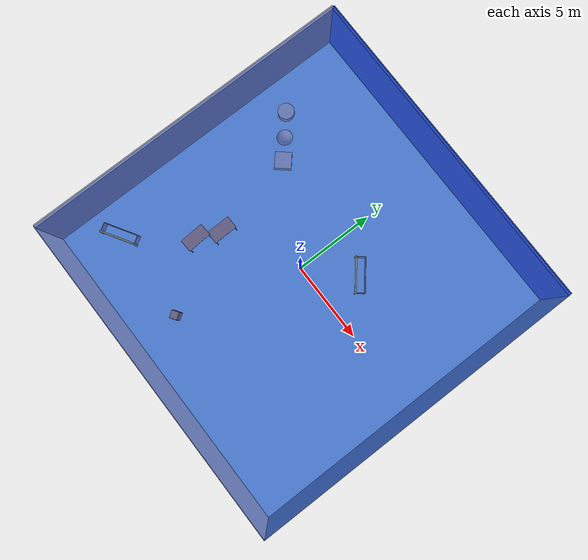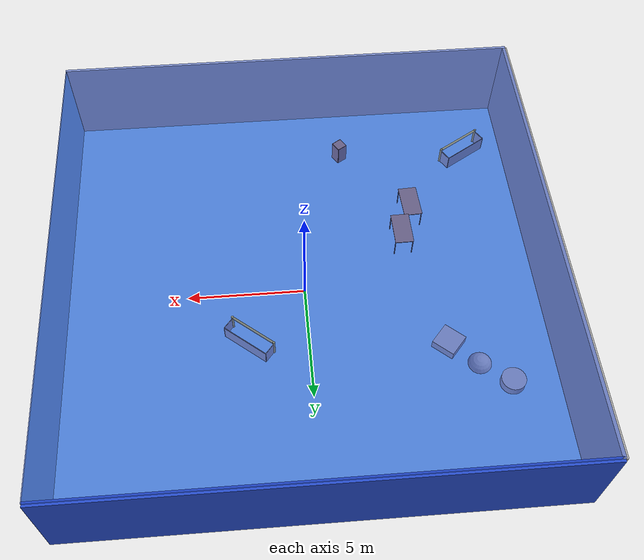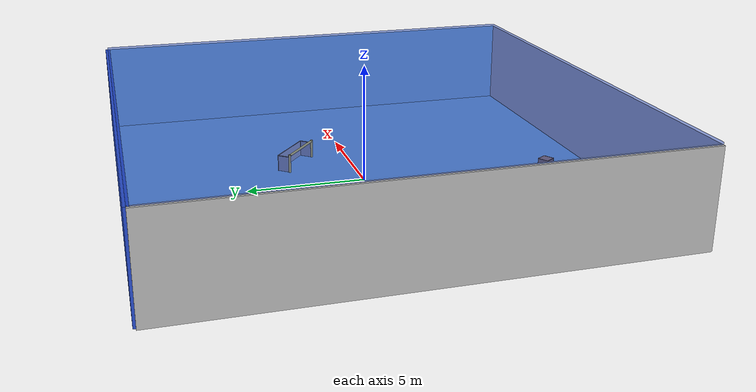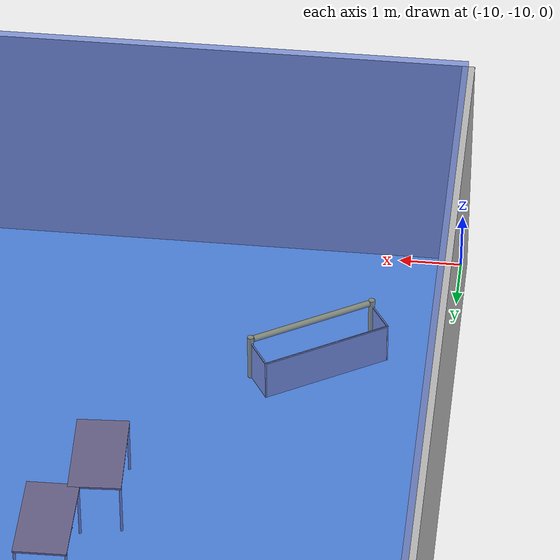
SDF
<sdf version="1.4">
 <world name="default">
  <physics type="ode">
   <max_step_size>0.001</max_step_size>
   <real_time_factor>1</real_time_factor>
   <real_time_update_rate>1000</real_time_update_rate>
   <gravity>0 0 -9.8</gravity>
  </physics>
  <scene><ambient>0.4 0.4 0.4 1</ambient><background>0.7 0.7 0.7 1</background><shadows>1</shadows></scene>
  <model name="Surrounding">
   <static>1</static>
   <link name="Ceiling">
    <collision name="Ceiling_Collision"><geometry><box><size>20 20 0.1</size></box></geometry></collision>
    <visual name="Ceiling_Visual">
     <geometry><box><size>20 20 0.1</size></box></geometry>
     <material>
      <script><uri>file://media/materials/scripts/gazebo.material</uri><name>Gazebo/BlueTransparent</name></script>
     </material>
    </visual>
    <pose>0 0 4.05 0 0 0</pose>
   </link>
   <link name="Wall_South">
    <collision name="Wall_South_Collision">
     <geometry><box><size>20 0 4</size></box></geometry>
     <pose>0 0 2 0 -0 0</pose>
    </collision>
    <visual name="Wall_South_Visual">
     <pose>0 0 2 0 -0 0</pose>
     <geometry><box><size>20 0 4</size></box></geometry>
     <material>
      <script><uri>file://media/materials/scripts/gazebo.material</uri><name>Gazebo/CeilingTiled</name></script>
     </material>
    </visual>
    <velocity_decay><linear>0</linear><angular>0</angular></velocity_decay>
    <pose>0 -10 0 0 -0 0</pose>
   </link>
   <link name="Wall_East">
    <collision name="Wall_21_Collision">
     <geometry><box><size>20 0 4</size></box></geometry>
     <pose>0 0 2 0 -0 0</pose>
    </collision>
    <visual name="Wall_21_Visual">
     <pose>0 0 2 0 -0 0</pose>
     <geometry><box><size>20 0 4</size></box></geometry>
     <material>
      <script><uri>file://media/materials/scripts/gazebo.material</uri><name>Gazebo/SkyBlue</name></script>
     </material>
    </visual>
    <velocity_decay><linear>0</linear><angular>0</angular></velocity_decay>
    <pose>10 0 0 0 -0 1.5708</pose>
   </link>
   <link name="Wall_North">
    <collision name="Wall_22_Collision">
     <geometry><box><size>20 0.2 4</size></box></geometry>
     <pose>0 0 2 0 -0 0</pose>
    </collision>
    <visual name="Wall_22_Visual">
     <pose>0 0 2 0 -0 0</pose>
     <geometry><box><size>20 0.2 4</size></box></geometry>
     <material>
      <script><uri>file://media/materials/scripts/gazebo.material</uri><name>Gazebo/BlueGlow</name></script>
     </material>
    </visual>
    <velocity_decay><linear>0</linear><angular>0</angular></velocity_decay>
    <pose>0 10 0 0 -0 0</pose>
   </link>
   <link name="Wall_West">
    <collision name="Wall_23_Collision">
     <geometry><box><size>20 0.2 4</size></box></geometry>
     <pose>0 0 2 0 -0 0</pose>
    </collision>
    <visual name="Wall_23_Visual">
     <pose>0 0 2 0 -0 0</pose>
     <geometry><box><size>20 0.2 4</size></box></geometry>
     <material>
      <script><uri>file://media/materials/scripts/gazebo.material</uri><name>Gazebo/LightOff</name></script>
     </material>
    </visual>
    <velocity_decay><linear>0</linear><angular>0</angular></velocity_decay>
    <pose>-10 0 0 0 0 -1.5708</pose>
   </link>
   <link name="Ground_link">
    <collision name="collision">
     <pose>0 0 .05 0 -0 0</pose>
     <geometry><box><size>20 20 0.1</size></box></geometry>
    </collision>
    <visual name="visual">
     <pose>0 0 .05 0 -0 0</pose>
     <geometry><box><size>20 20 0.1</size></box></geometry>
     <material>
      <script><uri>file://media/materials/scripts/gazebo.material</uri><name>Gazebo/SkyBlue</name></script>
     </material>
    </visual>
   </link>
   <static>1</static>
  </model>
  <spherical_coordinates>
   <surface_model>EARTH_WGS84</surface_model>
   <latitude_deg>0</latitude_deg>
   <longitude_deg>0</longitude_deg>
   <elevation>0</elevation>
   <heading_deg>0</heading_deg>
  </spherical_coordinates>
  <light name="lightball_0" type="diffuse">
   <diffuse>0.8 0.8 0.8 1</diffuse>
   <specular>0.2 0.2 0.2 1</specular>
   <attenuation>
    <range>100</range>
    <constant>0.7</constant>
    <linear>0.01</linear>
    <quadratic>0.001</quadratic>
   </attenuation>
   <direction>-0.5 0.1 -0.9</direction>
   <pose>-5.89853536084 1.57136642123 1.50411400072 0 0 0</pose>
  </light>
  <light name="lightball_1" type="diffuse">
   <diffuse>0.8 0.8 0.8 1</diffuse>
   <specular>0.2 0.2 0.2 1</specular>
   <attenuation>
    <range>100</range>
    <constant>0.7</constant>
    <linear>0.01</linear>
    <quadratic>0.001</quadratic>
   </attenuation>
   <direction>-0.5 0.1 -0.9</direction>
   <pose>4.66119897508 -6.52795968992 0.801674971342 0 0 0</pose>
  </light>
  <light name="lightball_2" type="diffuse">
   <diffuse>0.8 0.8 0.8 1</diffuse>
   <specular>0.2 0.2 0.2 1</specular>
   <attenuation>
    <range>100</range>
    <constant>0.7</constant>
    <linear>0.01</linear>
    <quadratic>0.001</quadratic>
   </attenuation>
   <direction>-0.5 0.1 -0.9</direction>
   <pose>-1.70756710552 -0.0141955603633 1.3141226564 0 0 0</pose>
  </light>
  <light name="lightball_3" type="diffuse">
   <diffuse>0.8 0.8 0.8 1</diffuse>
   <specular>0.2 0.2 0.2 1</specular>
   <attenuation>
    <range>100</range>
    <constant>0.7</constant>
    <linear>0.01</linear>
    <quadratic>0.001</quadratic>
   </attenuation>
   <direction>-0.5 0.1 -0.9</direction>
   <pose>8.29766404248 -6.28534963235 1.33023330233 0 0 0</pose>
  </light>
  <light name="lightball_4" type="diffuse">
   <diffuse>0.8 0.8 0.8 1</diffuse>
   <specular>0.2 0.2 0.2 1</specular>
   <attenuation>
    <range>100</range>
    <constant>0.7</constant>
    <linear>0.01</linear>
    <quadratic>0.001</quadratic>
   </attenuation>
   <direction>-0.5 0.1 -0.9</direction>
   <pose>6.204774944 4.156924615 2.48586316904 0 0 0</pose>
  </light>
  <light name="lightball_5" type="diffuse">
   <diffuse>0.8 0.8 0.8 1</diffuse>
   <specular>0.2 0.2 0.2 1</specular>
   <attenuation>
    <range>100</range>
    <constant>0.7</constant>
    <linear>0.01</linear>
    <quadratic>0.001</quadratic>
   </attenuation>
   <direction>-0.5 0.1 -0.9</direction>
   <pose>-0.385526046135 1.00841517697 3.4909361524 0 0 0</pose>
  </light>
  <light name="lightball_6" type="diffuse">
   <diffuse>0.8 0.8 0.8 1</diffuse>
   <specular>0.2 0.2 0.2 1</specular>
   <attenuation>
    <range>100</range>
    <constant>0.7</constant>
    <linear>0.01</linear>
    <quadratic>0.001</quadratic>
   </attenuation>
   <direction>-0.5 0.1 -0.9</direction>
   <pose>-2.055765247 8.00623807468 1.11357734511 0 0 0</pose>
  </light>
  <light name="lightball_7" type="diffuse">
   <diffuse>0.8 0.8 0.8 1</diffuse>
   <specular>0.2 0.2 0.2 1</specular>
   <attenuation>
    <range>100</range>
    <constant>0.7</constant>
    <linear>0.01</linear>
    <quadratic>0.001</quadratic>
   </attenuation>
   <direction>-0.5 0.1 -0.9</direction>
   <pose>-3.95924504517 -6.18843956791 3.09055379605 0 0 0</pose>
  </light>
  <light name="lightball_8" type="diffuse">
   <diffuse>0.8 0.8 0.8 1</diffuse>
   <specular>0.2 0.2 0.2 1</specular>
   <attenuation>
    <range>100</range>
    <constant>0.7</constant>
    <linear>0.01</linear>
    <quadratic>0.001</quadratic>
   </attenuation>
   <direction>-0.5 0.1 -0.9</direction>
   <pose>-6.90273923039 4.31878472571 2.56851369142 0 0 0</pose>
  </light>
  <light name="lightball_9" type="diffuse">
   <diffuse>0.8 0.8 0.8 1</diffuse>
   <specular>0.2 0.2 0.2 1</specular>
   <attenuation>
    <range>100</range>
    <constant>0.7</constant>
    <linear>0.01</linear>
    <quadratic>0.001</quadratic>
   </attenuation>
   <direction>-0.5 0.1 -0.9</direction>
   <pose>5.024124933 -1.42105555042 2.70278552002 0 0 0</pose>
  </light>
  <include>
   <uri>model://robocup_3Dsim_goal</uri>
   <pose>-7.83241515323 -7.32951402401 0 0 0 2.11985770847</pose>
  </include>
  <include>
   <uri>model://textured_shapes</uri>
   <pose>-6.81937663562 4.08070020045 0 0 0 0.856749956138</pose>
  </include>
  <include><uri>model://table</uri><pose>-5.01106416829 -3.74636765418 0 0 0 1.62590173871</pose></include>
  <include><uri>model://table</uri><pose>-4.4499464876 -2.28197236764 0 0 0 1.58904006547</pose></include>
  <include><uri>model://cabinet</uri><pose>-2.19807691616 -7.33590887588 0 0 0 0.573195088123</pose></include>
  <include>
   <uri>model://robocup_3Dsim_goal</uri>
   <pose>2.28472183821 2.2483553764 0 0 0 0.886212486464</pose>
  </include>
 </world>
</sdf>

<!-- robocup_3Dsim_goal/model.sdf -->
<sdf version="1.5">
  <model name="robocup_3d_goal">
    <static>true</static>
    <link name="left_post">
      <pose>0 1.05 0.45 0 0 0</pose>
      <collision name="collision">
        <geometry>
          <cylinder>
            <radius>0.05</radius>
            <length>0.9</length>
          </cylinder>
        </geometry>
      </collision>
      <visual name="visual">
        <geometry>
          <cylinder>
            <radius>0.05</radius>
            <length>0.9</length>
          </cylinder>
        </geometry>
        <material>
          <script>
            <uri>file://media/materials/scripts/gazebo.material</uri>
            <name>Gazebo/ZincYellow</name>
          </script>
        </material>
      </visual>
    </link>
    <link name="left_support_horiz_lower">
      <pose>0.30 1.05 0.01 0 0 0</pose>
      <collision name="collision">
        <geometry>
          <box>
            <size>0.50 0.02 0.02</size>
          </box>
        </geometry>
      </collision>
      <visual name="visual">
        <geometry>
          <box>
            <size>0.50 0.02 0.02</size>
          </box>
        </geometry>
        <material>
          <script>
            <uri>file://media/materials/scripts/gazebo.material</uri>
            <name>Gazebo/White</name>
          </script>
        </material>
      </visual>
    </link>
    <link name="left_support_horiz_upper">
      <pose>0.30 1.05 0.79 0 0 0</pose>
      <collision name="collision">
        <geometry>
          <box>
            <size>0.50 0.02 0.02</size>
          </box>
        </geometry>
      </collision>
      <visual name="visual">
        <geometry>
          <box>
            <size>0.50 0.02 0.02</size>
          </box>
        </geometry>
        <material>
          <script>
            <uri>file://media/materials/scripts/gazebo.material</uri>
            <name>Gazebo/White</name>
          </script>
        </material>
      </visual>
    </link>
    <link name="left_support_vertical">
      <pose>0.56 1.05 0.4 0 1.5708 0</pose>
      <collision name="collision">
        <geometry>
          <box>
            <size>0.80 0.02 0.02</size>
          </box>
        </geometry>
      </collision>
      <visual name="visual">
        <geometry>
          <box>
            <size>0.80 0.02 0.02</size>
          </box>
        </geometry>
        <material>
          <script>
            <uri>file://media/materials/scripts/gazebo.material</uri>
            <name>Gazebo/White</name>
          </script>
        </material>
      </visual>
    </link>
    <link name="right_support_horiz_lower">
      <pose>0.30 -1.05 0.01 0 0 0</pose>
      <collision name="collision">
        <geometry>
          <box>
            <size>0.50 0.02 0.02</size>
          </box>
        </geometry>
      </collision>
      <visual name="visual">
        <geometry>
          <box>
            <size>0.50 0.02 0.02</size>
          </box>
        </geometry>
        <material>
          <script>
            <uri>file://media/materials/scripts/gazebo.material</uri>
            <name>Gazebo/White</name>
          </script>
        </material>
      </visual>
    </link>
    <link name="right_support_horiz_upper">
      <pose>0.30 -1.05 0.79 0 0 0</pose>
      <collision name="collision">
        <geometry>
          <box>
            <size>0.50 0.02 0.02</size>
          </box>
        </geometry>
      </collision>
      <visual name="visual">
        <geometry>
          <box>
            <size>0.50 0.02 0.02</size>
          </box>
        </geometry>
        <material>
          <script>
            <uri>file://media/materials/scripts/gazebo.material</uri>
            <name>Gazebo/White</name>
          </script>
        </material>
      </visual>
    </link>
    <link name="right_support_vertical">
      <pose>0.56 -1.05 0.4 0 1.5708 0</pose>
      <collision name="collision">
        <geometry>
          <box>
            <size>0.80 0.02 0.02</size>
          </box>
        </geometry>
      </collision>
      <visual name="visual">
        <geometry>
          <box>
            <size>0.80 0.02 0.02</size>
          </box>
        </geometry>
        <material>
          <script>
            <uri>file://media/materials/scripts/gazebo.material</uri>
            <name>Gazebo/White</name>
          </script>
        </material>
      </visual>
    </link>
    <link name="center_support_horiz_lower">
      <pose>0.56 0 0.01 0 1.5708 0</pose>
      <collision name="collision">
        <geometry>
          <box>
            <size>0.02 2.08 0.02</size>
          </box>
        </geometry>
      </collision>
      <visual name="visual">
        <geometry>
          <box>
            <size>0.02 2.08 0.02</size>
          </box>
        </geometry>
        <material>
          <script>
            <uri>file://media/materials/scripts/gazebo.material</uri>
            <name>Gazebo/White</name>
          </script>
        </material>
      </visual>
    </link>
    <link name="center_support_horiz_upper">
      <pose>0.56 0 0.79 0 1.5708 0</pose>
      <collision name="collision">
        <geometry>
          <box>
            <size>0.02 2.08 0.02</size>
          </box>
        </geometry>
      </collision>
      <visual name="visual">
        <geometry>
          <box>
            <size>0.02 2.08 0.02</size>
          </box>
        </geometry>
        <material>
          <script>
            <uri>file://media/materials/scripts/gazebo.material</uri>
            <name>Gazebo/White</name>
          </script>
        </material>
      </visual>
    </link>
    <link name="right_post">
      <pose>0 -1.05 0.45 0 0 0</pose>
      <collision name="collision">
        <geometry>
          <cylinder>
            <radius>0.05</radius>
            <length>0.9</length>
          </cylinder>
        </geometry>
      </collision>
      <visual name="visual">
        <geometry>
          <cylinder>
            <radius>0.05</radius>
            <length>0.9</length>
          </cylinder>
        </geometry>
        <material>
          <script>
            <uri>file://media/materials/scripts/gazebo.material</uri>
            <name>Gazebo/ZincYellow</name>
          </script>
        </material>
      </visual>
    </link>
    <link name="crossbar">
      <pose>0 0 0.85 1.57 1.57 0</pose>
      <collision name="collision">
        <geometry>
          <cylinder>
            <radius>0.05</radius>
            <length>2.0</length>
          </cylinder>
        </geometry>
      </collision>
      <visual name="visual">
        <geometry>
          <cylinder>
            <radius>0.05</radius>
            <length>2.0</length>
          </cylinder>
        </geometry>
        <material>
          <script>
            <uri>file://media/materials/scripts/gazebo.material</uri>
            <name>Gazebo/ZincYellow</name>
          </script>
        </material>
      </visual>
    </link>
    <link name="center_net">
      <pose>0.56 0 0.40 0 0 0</pose>
      <collision name="collision">
        <geometry>
          <box>
            <size>0.01 2.1 0.80</size>
          </box>
        </geometry>
      </collision>
      <visual name="visual">
        <geometry>
          <box>
            <size>0.01 2.1 0.80</size>
          </box>
        </geometry>
        <material>
          <script>
            <uri>model://../model_source/models/robocup09_spl_field/materials/scripts/</uri>
            <uri>model://../model_source/models/robocup09_spl_field/materials/textures/</uri>
            <name>RoboCup/Net</name>
          </script>
        </material>
      </visual>
    </link>
    <link name="left_net">
      <pose>0.30 1.05 0.40 0 0 0</pose>
      <collision name="collision">
        <geometry>
          <box>
            <size>0.50 0.01 0.76</size>
          </box>
        </geometry>
      </collision>
      <visual name="visual">
        <geometry>
          <box>
            <size>0.50 0.01 0.76</size>
          </box>
        </geometry>
        <material>
          <script>
            <uri>model://../model_source/models/robocup09_spl_field/materials/scripts/</uri>
            <uri>model://../model_source/models/robocup09_spl_field/materials/textures/</uri>
            <name>RoboCup/Net</name>
          </script>
        </material>
      </visual>
    </link>
    <link name="right_net">
      <pose>0.30 -1.05 0.40 0 0 0</pose>
      <collision name="collision">
        <geometry>
          <box>
            <size>0.50 0.01 0.76</size>
          </box>
        </geometry>
      </collision>
      <visual name="visual">
        <geometry>
          <box>
            <size>0.50 0.01 0.76</size>
          </box>
        </geometry>
        <material>
          <script>
            <uri>model://../model_source/models/robocup09_spl_field/materials/scripts/</uri>
            <uri>model://../model_source/models/robocup09_spl_field/materials/textures/</uri>
            <name>RoboCup/Net</name>
          </script>
        </material>
      </visual>
    </link>
  </model>
</sdf>

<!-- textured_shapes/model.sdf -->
<sdf version="1.6">
  <model name="textured_shapes">
    <pose>0 0 0.5 0 0 0</pose>
    <link name="box">
      <pose>0 -1.5 0 0 0 0</pose>
      <collision name="collision">
        <geometry>
          <box>
            <size>1 1 1</size>
          </box>
        </geometry>
      </collision>
      <visual name="visual">
        <geometry>
          <box>
            <size>1 1 1</size>
          </box>
        </geometry>
        <material>
          <script>
            <uri>model://../model_source/models/textured_shapes/materials/scripts</uri>
            <uri>model://../model_source/models/textured_shapes/materials/textures</uri>
            <name>TexturedShape/Squares</name>
          </script>
        </material>
      </visual>
    </link>
    <link name="sphere">
      <collision name="collision">
        <geometry>
          <sphere>
            <radius>0.5</radius>
          </sphere>
        </geometry>
      </collision>
      <visual name="visual">
        <geometry>
          <sphere>
            <radius>0.5</radius>
          </sphere>
        </geometry>
        <material>
          <script>
            <uri>model://../model_source/models/textured_shapes/materials/scripts</uri>
            <uri>model://../model_source/models/textured_shapes/materials/textures</uri>
            <name>TexturedShape/Squares</name>
          </script>
        </material>
      </visual>
    </link>
    <link name="cylinder">
      <pose>0 1.5 0 0 0 0</pose>
      <collision name="collision">
        <geometry>
          <cylinder>
            <radius>0.5</radius>
            <length>1</length>
          </cylinder>
        </geometry>
      </collision>
      <visual name="visual">
        <geometry>
          <cylinder>
            <radius>0.5</radius>
            <length>1</length>
          </cylinder>
        </geometry>
        <material>
          <script>
            <uri>model://../model_source/models/textured_shapes/materials/scripts</uri>
            <uri>model://../model_source/models/textured_shapes/materials/textures</uri>
            <name>TexturedShape/Squares</name>
          </script>
        </material>
      </visual>
    </link>
  </model>
</sdf>

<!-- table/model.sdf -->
<sdf version="1.5">
  <model name="table">
    <static>true</static>
    <link name="link">
      <collision name="surface">
        <pose>0 0 1.0 0 0 0</pose>
        <geometry>
          <box>
            <size>1.5 0.8 0.03</size>
          </box>
        </geometry>
        <surface>
          <friction>
            <ode>
              <mu>0.6</mu>
              <mu2>0.6</mu2>
            </ode>
          </friction>
        </surface>
      </collision>
      <visual name="visual1">
        <pose>0 0 1.0 0 0 0</pose>
        <geometry>
          <box>
            <size>1.5 0.8 0.03</size>
          </box>
        </geometry>
        <material>
          <script>
            <uri>model://media/materials/scripts/gazebo.material</uri>
            <name>Gazebo/Wood</name>
          </script>
        </material>
      </visual>
      <collision name="front_left_leg">
        <pose>0.68 0.38 0.5 0 0 0</pose>
        <geometry>
          <cylinder>
            <radius>0.02</radius>
            <length>1.0</length>
          </cylinder>
        </geometry>
      </collision>
      <visual name="front_left_leg">
        <pose>0.68 0.38 0.5 0 0 0</pose>
        <geometry>
          <cylinder>
            <radius>0.02</radius>
            <length>1.0</length>
          </cylinder>
        </geometry>
        <material>
          <script>
            <uri>model://media/materials/scripts/gazebo.material</uri>
            <name>Gazebo/Grey</name>
          </script>
        </material>
      </visual>
      <collision name="front_right_leg">
        <pose>0.68 -0.38 0.5 0 0 0</pose>
        <geometry>
          <cylinder>
            <radius>0.02</radius>
            <length>1.0</length>
          </cylinder>
        </geometry>
      </collision>
      <visual name="front_right_leg">
        <pose>0.68 -0.38 0.5 0 0 0</pose>
        <geometry>
          <cylinder>
            <radius>0.02</radius>
            <length>1.0</length>
          </cylinder>
        </geometry>
        <material>
          <script>
            <uri>model://media/materials/scripts/gazebo.material</uri>
            <name>Gazebo/Grey</name>
          </script>
        </material>
      </visual>
      <collision name="back_right_leg">
        <pose>-0.68 -0.38 0.5 0 0 0</pose>
        <geometry>
          <cylinder>
            <radius>0.02</radius>
            <length>1.0</length>
          </cylinder>
        </geometry>
      </collision>
      <visual name="back_right_leg">
        <pose>-0.68 -0.38 0.5 0 0 0</pose>
        <geometry>
          <cylinder>
            <radius>0.02</radius>
            <length>1.0</length>
          </cylinder>
        </geometry>
        <material>
          <script>
            <uri>model://media/materials/scripts/gazebo.material</uri>
            <name>Gazebo/Grey</name>
          </script>
        </material>
      </visual>
      <collision name="back_left_leg">
        <pose>-0.68 0.38 0.5 0 0 0</pose>
        <geometry>
          <cylinder>
            <radius>0.02</radius>
            <length>1.0</length>
          </cylinder>
        </geometry>
      </collision>
      <visual name="back_left_leg">
        <pose>-0.68 0.38 0.5 0 0 0</pose>
        <geometry>
          <cylinder>
            <radius>0.02</radius>
            <length>1.0</length>
          </cylinder>
        </geometry>
        <material>
          <script>
            <uri>model://media/materials/scripts/gazebo.material</uri>
            <name>Gazebo/Grey</name>
          </script>
        </material>
      </visual>
    </link>
  </model>
</sdf>

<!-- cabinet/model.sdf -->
<sdf version="1.5">
  <model name="cabinet">
    <static>true</static>
    <link name="cabinet_bottom_plate">
      <inertial>
        <pose>0 0 -1 0 0 0</pose>
        <inertia>
          <ixx>2.050000</ixx>
          <ixy>0</ixy>
          <ixz>0</ixz>
          <iyy>2.050000</iyy>
          <iyz>0</iyz>
          <izz>2.050000</izz>
        </inertia>
        <mass>25.000000</mass>
      </inertial>
      <collision name="cabinet_bottom_plate_geom">
        <pose>0 0 0.010000 0 0 0</pose>
        <geometry>
          <box>
            <size>0.450000 0.450000 0.020000</size>
          </box>
        </geometry>
      </collision>
      <visual name="cabinet_bottom_plate_geom_visual">
        <pose>0 0 0.010000 0 0 0</pose>
        <geometry>
          <box>
            <size>0.450000 0.450000 0.020000</size>
          </box>
        </geometry>
        <material>
          <script>
            <uri>model://media/materials/scripts/gazebo.material</uri>
            <name>Gazebo/Wood</name>
          </script>
        </material>
      </visual>
      <collision name="cabinet_bottom_plate_geom_cabinet_back_plate">
        <pose>0.235000 0 0.510000 0 0 0</pose>
        <geometry>
          <box>
            <size>0.020000 0.450000 1.020000</size>
          </box>
        </geometry>
      </collision>
      <visual name="cabinet_bottom_plate_geom_cabinet_back_plate_visual">
        <pose>0.235000 0 0.510000 0 0 0</pose>
        <geometry>
          <box>
            <size>0.020000 0.450000 1.020000</size>
          </box>
        </geometry>
        <material>
          <script>
            <uri>model://media/materials/scripts/gazebo.material</uri>
            <name>Gazebo/Wood</name>
          </script>
        </material>
      </visual>
      <collision name="cabinet_bottom_plate_geom_cabinet_left_plate">
        <pose>0 0.235000 0.510000 0 0 0</pose>
        <geometry>
          <box>
            <size>0.450000 0.020000 1.020000</size>
          </box>
        </geometry>
      </collision>
      <visual name="cabinet_bottom_plate_geom_cabinet_left_plate_visual">
        <pose>0 0.235000 0.510000 0 0 0</pose>
        <geometry>
          <box>
            <size>0.450000 0.020000 1.020000</size>
          </box>
        </geometry>
        <material>
          <script>
            <uri>model://media/materials/scripts/gazebo.material</uri>
            <name>Gazebo/Wood</name>
          </script>
        </material>
      </visual>
      <collision name="cabinet_bottom_plate_geom_cabinet_middle_plate">
        <pose>0 0 0.510000 0 0 0</pose>
        <geometry>
          <box>
            <size>0.450000 0.450000 0.020000</size>
          </box>
        </geometry>
      </collision>
      <visual name="cabinet_bottom_plate_geom_cabinet_middle_plate_visual">
        <pose>0 0 0.510000 0 0 0</pose>
        <geometry>
          <box>
            <size>0.450000 0.450000 0.020000</size>
          </box>
        </geometry>
        <material>
          <script>
            <uri>model://media/materials/scripts/gazebo.material</uri>
            <name>Gazebo/Wood</name>
          </script>
        </material>
      </visual>
      <collision name="cabinet_bottom_plate_geom_cabinet_right_plate">
        <pose>0 -0.235000 0.510000 0 0 0</pose>
        <geometry>
          <box>
            <size>0.450000 0.020000 1.020000</size>
          </box>
        </geometry>
      </collision>
      <visual name="cabinet_bottom_plate_geom_cabinet_right_plate_visual">
        <pose>0 -0.235000 0.510000 0 0 0</pose>
        <geometry>
          <box>
            <size>0.450000 0.020000 1.020000</size>
          </box>
        </geometry>
        <material>
          <script>
            <uri>model://media/materials/scripts/gazebo.material</uri>
            <name>Gazebo/Wood</name>
          </script>
        </material>
      </visual>
      <collision name="cabinet_bottom_plate_geom_cabinet_top_plate">
        <pose>0 0 1.010000 0 0 0</pose>
        <geometry>
          <box>
            <size>0.450000 0.450000 0.020000</size>
          </box>
        </geometry>
      </collision>
      <visual name="cabinet_bottom_plate_geom_cabinet_top_plate_visual">
        <pose>0 0 1.010000 0 0 0</pose>
        <geometry>
          <box>
            <size>0.450000 0.450000 0.020000</size>
          </box>
        </geometry>
        <material>
          <script>
            <uri>model://media/materials/scripts/gazebo.material</uri>
            <name>Gazebo/Wood</name>
          </script>
        </material>
      </visual>
    </link>
  </model>
</sdf>
